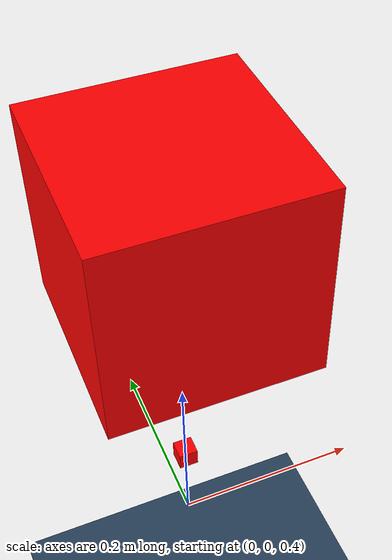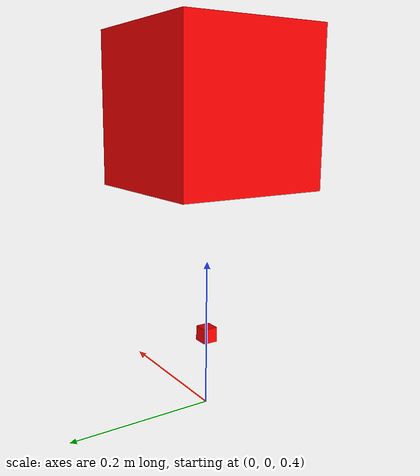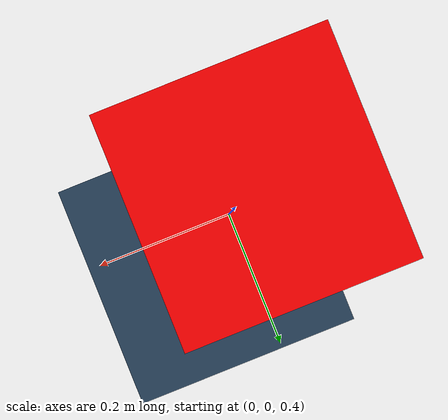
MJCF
<mujoco model="jk5">
    <compiler angle="radian" meshdir="../meshes/" coordinate="local"/>
    <size njmax="5000" nconmax="1000" />
    <option timestep="1e-3"/>
    <asset>
        <material name='floor_mat' texture="floor_tex"  shininess="0.8" texrepeat="10 10" specular="0.7"  reflectance="0.5" />
        <texture name="floor_tex" type="2d" builtin="checker" rgb1=".2 .3 .4" rgb2=".1 .2 .3" width="100" height="100" />
    </asset>
    <worldbody>
        <light name="light" mode="targetbody" target="mybox" directional="true" pos="1 1 3" />
        <geom name='floor' material="floor_mat" pos='0 0 0' size='2.5 2.5 0.1'  type='plane'/>
        <body name="mybox" pos="0 0 0.8">
            <inertial pos="0 0 0" mass="1" diaginertia="0.1 0.1 0.1" />
            <geom type="box" pos="0 0 0" size="0.1 0.1 0.1" rgba="1 0 0 1"/>
            <site name="sensor1" pos="0 0 -0.3" rgba="1 0 0 0" size="0.01 0.01 0.01" type="box"/>
            <joint type="free"/>
            <body name="dummy body" pos="0 0 -0.">
                <inertial pos="0 0 0" mass="0" diaginertia="0 0 0" />
                <geom type="box" pos="0 0 0" size="0.1 0.1 0.1" rgba="0 1 0 1"/>
                <site name="sensor2" pos="0 0 -0.3" rgba="1 0 0 1" size="0.01 0.01 0.01" type="box"/>
            </body>
        </body>
    </worldbody>
    <sensor>
        <force name="force1" site="sensor1"/>
        <force name="force2" site="sensor2"/>
    </sensor>
</mujoco>
